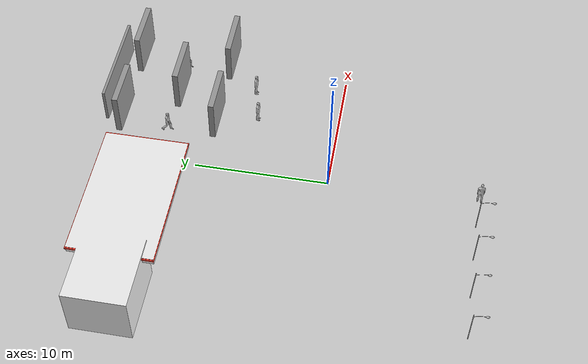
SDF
<sdf version="1.6">
 <world name="default">
  <light name="sun" type="directional">
   <pose>0 0 10 0 -0 0</pose>
   <diffuse>0.8 0.8 0.8 1</diffuse>
   <specular>0.1 0.1 0.1 1</specular>
   <attenuation>
    <range>1000</range>
    <constant>0.9</constant>
    <linear>0.01</linear>
    <quadratic>0.001</quadratic>
   </attenuation>
   <direction>-0.5 0.5 -1</direction>
  </light>
  <model name="ground_plane">
   <static>1</static>
   <link name="link">
    <collision name="collision">
     <geometry><plane><normal>0 0 1</normal><size>100 100</size></plane></geometry>
     <surface><friction><ode><mu>100</mu><mu2>50</mu2></ode></friction></surface>
    </collision>
    <visual name="visual">
     <cast_shadows>0</cast_shadows>
     <geometry><plane><normal>0 0 1</normal><size>100 100</size></plane></geometry>
     <material>
      <script><uri>file://media/materials/scripts/gazebo.material</uri><name>Gazebo/Grey</name></script>
     </material>
    </visual>
   </link>
  </model>
  <gravity>0 0 -9.8</gravity>
  <magnetic_field>6e-06 2.3e-05 -4.2e-05</magnetic_field>
  <atmosphere type="adiabatic"/>
  <physics name="default_physics" default="0" type="ode">
   <max_step_size>0.001</max_step_size>
   <real_time_factor>1</real_time_factor>
   <real_time_update_rate>1000</real_time_update_rate>
  </physics>
  <scene><ambient>0.4 0.4 0.4 1</ambient><background>0.7 0.7 0.7 1</background><shadows>1</shadows></scene>
  <spherical_coordinates>
   <surface_model>EARTH_WGS84</surface_model>
   <latitude_deg>0</latitude_deg>
   <longitude_deg>0</longitude_deg>
   <elevation>0</elevation>
   <heading_deg>0</heading_deg>
  </spherical_coordinates>
  <model name="Gas Station">
   <static>1</static>
   <link name="link">
    <collision name="collision">
     <geometry><mesh><uri>model://gas_station/meshes/gas_station.dae</uri><scale>1 1 1</scale></mesh></geometry>
    </collision>
    <visual name="visual">
     <geometry><mesh><uri>model://gas_station/meshes/gas_station.dae</uri><scale>1 1 1</scale></mesh></geometry>
     <material>
      <script>
       <uri>model://gas_station/materials/scripts</uri>
       <uri>model://gas_station/materials/textures</uri>
       <name>GasStation/Diffuse</name>
      </script>
      <shader type="normal_map_object_space"><normal_map>GasStation_Normal.png</normal_map></shader>
     </material>
    </visual>
   </link>
   <pose>-8.56325 13.016 0 0 -0 0</pose>
  </model>
  <model name="person_walking_1">
   <link name="link">
    <inertial>
     <pose>0 0 0.95 0 -0 0</pose>
     <mass>80</mass>
     <inertia><ixx>27.82</ixx><ixy>0</ixy><ixz>0</ixz><iyy>24.88</iyy><iyz>0</iyz><izz>4.57</izz></inertia>
    </inertial>
    <collision name="bottom">
     <pose>0 0 0.01 0 -0 0</pose>
     <geometry><box><size>0.35 0.75 0.02</size></box></geometry>
    </collision>
    <collision name="person">
     <pose>0 0 -0.02 0 -0 0</pose>
     <geometry><mesh><uri>model://person_walking/meshes/walking.dae</uri><scale>1 1 1</scale></mesh></geometry>
    </collision>
    <visual name="visual">
     <pose>0 0 -0.02 0 -0 0</pose>
     <geometry><mesh><uri>model://person_walking/meshes/walking.dae</uri><scale>1 1 1</scale></mesh></geometry>
    </visual>
   </link>
   <pose>9.7889 12.8005 -1e-06 -2e-06 -2e-06 -0.000448</pose>
  </model>
  <model name="person_standing_1">
   <link name="link">
    <inertial>
     <pose>0 -0.1 0.95 0 -0 0</pose>
     <mass>80</mass>
     <inertia><ixx>24.88</ixx><ixy>0</ixy><ixz>0</ixz><iyy>25.73</iyy><iyz>0</iyz><izz>2.48</izz></inertia>
    </inertial>
    <collision name="bottom">
     <pose>0 -0.1 0.01 0 -0 0</pose>
     <geometry><box><size>0.5 0.35 0.02</size></box></geometry>
    </collision>
    <collision name="person">
     <pose>0 0 0.02 0.04 -0 0</pose>
     <geometry><mesh><uri>model://person_standing/meshes/standing.dae</uri><scale>1 1 1</scale></mesh></geometry>
    </collision>
    <visual name="visual">
     <pose>0 0 0.02 0.04 -0 0</pose>
     <geometry><mesh><uri>model://person_standing/meshes/standing.dae</uri><scale>1 1 1</scale></mesh></geometry>
    </visual>
   </link>
   <pose>7.94592 6.93555 0 -1e-06 1e-06 -0.001835</pose>
  </model>
  <model name="person_standing_2">
   <link name="link">
    <inertial>
     <pose>0 -0.1 0.95 0 -0 0</pose>
     <mass>80</mass>
     <inertia><ixx>24.88</ixx><ixy>0</ixy><ixz>0</ixz><iyy>25.73</iyy><iyz>0</iyz><izz>2.48</izz></inertia>
    </inertial>
    <collision name="bottom">
     <pose>0 -0.1 0.01 0 -0 0</pose>
     <geometry><box><size>0.5 0.35 0.02</size></box></geometry>
    </collision>
    <collision name="person">
     <pose>0 0 0.02 0.04 -0 0</pose>
     <geometry><mesh><uri>model://person_standing/meshes/standing.dae</uri><scale>1 1 1</scale></mesh></geometry>
    </collision>
    <visual name="visual">
     <pose>0 0 0.02 0.04 -0 0</pose>
     <geometry><mesh><uri>model://person_standing/meshes/standing.dae</uri><scale>1 1 1</scale></mesh></geometry>
    </visual>
   </link>
   <pose>5.29093 6.30096 0 1e-06 1e-06 -0.002349</pose>
  </model>
  <model name="person_walking_2">
   <link name="link">
    <inertial>
     <pose>0 0 0.95 0 -0 0</pose>
     <mass>80</mass>
     <inertia><ixx>27.82</ixx><ixy>0</ixy><ixz>0</ixz><iyy>24.88</iyy><iyz>0</iyz><izz>4.57</izz></inertia>
    </inertial>
    <collision name="bottom">
     <pose>0 0 0.01 0 -0 0</pose>
     <geometry><box><size>0.35 0.75 0.02</size></box></geometry>
    </collision>
    <collision name="person">
     <pose>0 0 -0.02 0 -0 0</pose>
     <geometry><mesh><uri>model://person_walking/meshes/walking.dae</uri><scale>1 1 1</scale></mesh></geometry>
    </collision>
    <visual name="visual">
     <pose>0 0 -0.02 0 -0 0</pose>
     <geometry><mesh><uri>model://person_walking/meshes/walking.dae</uri><scale>1 1 1</scale></mesh></geometry>
    </visual>
   </link>
   <pose>3.08554 12.8132 0 0 -1e-06 -0.000385</pose>
  </model>
  <model name="grey_wall_0">
   <static>1</static>
   <link name="link">
    <pose>0 0 1.4 0 -0 0</pose>
    <collision name="collision"><geometry><box><size>7.5 0.2 2.8</size></box></geometry></collision>
    <visual name="visual">
     <cast_shadows>0</cast_shadows>
     <geometry><box><size>7.5 0.2 2.8</size></box></geometry>
     <material>
      <script>
       <uri>model://grey_wall/materials/scripts</uri>
       <uri>model://grey_wall/materials/textures</uri>
       <name>vrc/grey_wall</name>
      </script>
     </material>
    </visual>
   </link>
   <pose>7.1378 17.7007 0 0 -0 0</pose>
  </model>
  <model name="person_standing_3">
   <link name="link">
    <inertial>
     <pose>0 -0.1 0.95 0 -0 0</pose>
     <mass>80</mass>
     <inertia><ixx>24.88</ixx><ixy>0</ixy><ixz>0</ixz><iyy>25.73</iyy><iyz>0</iyz><izz>2.48</izz></inertia>
    </inertial>
    <collision name="bottom">
     <pose>0 -0.1 0.01 0 -0 0</pose>
     <geometry><box><size>0.5 0.35 0.02</size></box></geometry>
    </collision>
    <collision name="person">
     <pose>0 0 0.02 0.04 -0 0</pose>
     <geometry><mesh><uri>model://person_standing/meshes/standing.dae</uri><scale>1 1 1</scale></mesh></geometry>
    </collision>
    <visual name="visual">
     <pose>0 0 0.02 0.04 -0 0</pose>
     <geometry><mesh><uri>model://person_standing/meshes/standing.dae</uri><scale>1 1 1</scale></mesh></geometry>
    </visual>
   </link>
   <pose>0.239361 -11.024 0 1e-06 -1e-06 1.5733</pose>
  </model>
  <model name="Lamp Post">
   <static>1</static>
   <link name="link">
    <collision name="collision">
     <geometry><mesh><uri>model://lamp_post/meshes/lamp_post.dae</uri><scale>1 1 1</scale></mesh></geometry>
    </collision>
    <visual name="visual">
     <geometry><mesh><uri>model://lamp_post/meshes/lamp_post.dae</uri><scale>1 1 1</scale></mesh></geometry>
    </visual>
   </link>
   <pose>-2.04688 -10.9212 0 0 -0 0</pose>
  </model>
  <model name="Lamp Post_0">
   <static>1</static>
   <link name="link">
    <collision name="collision">
     <geometry><mesh><uri>model://lamp_post/meshes/lamp_post.dae</uri><scale>1 1 1</scale></mesh></geometry>
    </collision>
    <visual name="visual">
     <geometry><mesh><uri>model://lamp_post/meshes/lamp_post.dae</uri><scale>1 1 1</scale></mesh></geometry>
    </visual>
   </link>
   <pose>-4.89739 -10.9213 0 0 -0 0</pose>
  </model>
  <model name="Lamp Post_1">
   <static>1</static>
   <link name="link">
    <collision name="collision">
     <geometry><mesh><uri>model://lamp_post/meshes/lamp_post.dae</uri><scale>1 1 1</scale></mesh></geometry>
    </collision>
    <visual name="visual">
     <geometry><mesh><uri>model://lamp_post/meshes/lamp_post.dae</uri><scale>1 1 1</scale></mesh></geometry>
    </visual>
   </link>
   <pose>-7.99602 -10.9124 0 0 -0 0</pose>
  </model>
  <model name="Lamp Post_2">
   <static>1</static>
   <link name="link">
    <collision name="collision">
     <geometry><mesh><uri>model://lamp_post/meshes/lamp_post.dae</uri><scale>1 1 1</scale></mesh></geometry>
    </collision>
    <visual name="visual">
     <geometry><mesh><uri>model://lamp_post/meshes/lamp_post.dae</uri><scale>1 1 1</scale></mesh></geometry>
    </visual>
   </link>
   <pose>-11.1879 -10.9608 0 0 -0 0</pose>
  </model>
  <model name="unit_box_0_clone_0_clone_clone">
   <pose>10.5966 16.4542 1.69494 3e-06 1e-06 -2.1e-05</pose>
   <link name="link">
    <inertial>
     <mass>1</mass>
     <inertia>
      <ixx>0.166667</ixx>
      <ixy>0</ixy>
      <ixz>0</ixz>
      <iyy>0.166667</iyy>
      <iyz>0</iyz>
      <izz>0.166667</izz>
     </inertia>
    </inertial>
    <collision name="collision"><geometry><box><size>3.72878 0.427771 3.38987</size></box></geometry></collision>
    <visual name="visual">
     <geometry><box><size>3.72878 0.427771 3.38987</size></box></geometry>
     <material>
      <script><name>Gazebo/Grey</name><uri>file://media/materials/scripts/gazebo.material</uri></script>
     </material>
    </visual>
   </link>
  </model>
  <model name="unit_box_0_clone_0_clone_clone_0">
   <pose>7.38777 12.6483 1.69494 5e-06 1e-06 -1.5e-05</pose>
   <link name="link">
    <inertial>
     <mass>1</mass>
     <inertia>
      <ixx>0.166667</ixx>
      <ixy>0</ixy>
      <ixz>0</ixz>
      <iyy>0.166667</iyy>
      <iyz>0</iyz>
      <izz>0.166667</izz>
     </inertia>
    </inertial>
    <collision name="collision"><geometry><box><size>3.72878 0.427771 3.38987</size></box></geometry></collision>
    <visual name="visual">
     <geometry><box><size>3.72878 0.427771 3.38987</size></box></geometry>
     <material>
      <script><name>Gazebo/Grey</name><uri>file://media/materials/scripts/gazebo.material</uri></script>
     </material>
    </visual>
   </link>
  </model>
  <model name="unit_box_0_clone_0_clone_clone_1">
   <pose>4.8396 9.32648 1.69494 4e-06 -1e-06 -7e-06</pose>
   <link name="link">
    <inertial>
     <mass>1</mass>
     <inertia>
      <ixx>0.166667</ixx>
      <ixy>0</ixy>
      <ixz>0</ixz>
      <iyy>0.166667</iyy>
      <iyz>0</iyz>
      <izz>0.166667</izz>
     </inertia>
    </inertial>
    <collision name="collision"><geometry><box><size>3.72878 0.427771 3.38987</size></box></geometry></collision>
    <visual name="visual">
     <geometry><box><size>3.72878 0.427771 3.38987</size></box></geometry>
     <material>
      <script><name>Gazebo/Grey</name><uri>file://media/materials/scripts/gazebo.material</uri></script>
     </material>
    </visual>
   </link>
  </model>
  <model name="unit_box_0_clone_0_clone_clone_2">
   <pose>10.9445 9.29104 1.69493 3e-06 -2e-06 -6e-06</pose>
   <link name="link">
    <inertial>
     <mass>1</mass>
     <inertia>
      <ixx>0.166667</ixx>
      <ixy>0</ixy>
      <ixz>0</ixz>
      <iyy>0.166667</iyy>
      <iyz>0</iyz>
      <izz>0.166667</izz>
     </inertia>
    </inertial>
    <collision name="collision"><geometry><box><size>3.72878 0.427771 3.38987</size></box></geometry></collision>
    <visual name="visual">
     <geometry><box><size>3.72878 0.427771 3.38987</size></box></geometry>
     <material>
      <script><name>Gazebo/Grey</name><uri>file://media/materials/scripts/gazebo.material</uri></script>
     </material>
    </visual>
   </link>
  </model>
  <model name="unit_box_0_clone_0_clone_clone_clone">
   <pose>4.25433 16.5018 1.69494 3e-06 1e-06 -3.1e-05</pose>
   <link name="link">
    <inertial>
     <mass>1</mass>
     <inertia>
      <ixx>0.166667</ixx>
      <ixy>0</ixy>
      <ixz>0</ixz>
      <iyy>0.166667</iyy>
      <iyz>0</iyz>
      <izz>0.166667</izz>
     </inertia>
    </inertial>
    <collision name="collision"><geometry><box><size>3.72878 0.427771 3.38987</size></box></geometry></collision>
    <visual name="visual">
     <geometry><box><size>3.72878 0.427771 3.38987</size></box></geometry>
     <material>
      <script><name>Gazebo/Grey</name><uri>file://media/materials/scripts/gazebo.material</uri></script>
     </material>
    </visual>
   </link>
  </model>
 </world>
</sdf>
